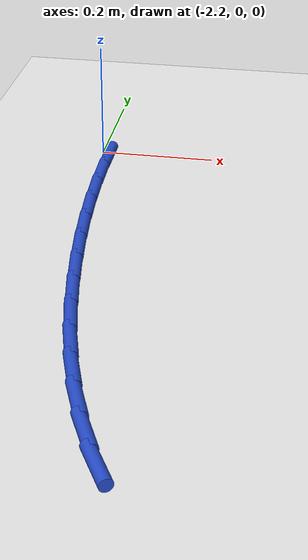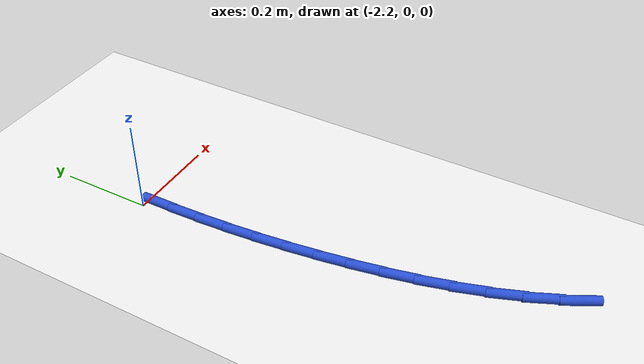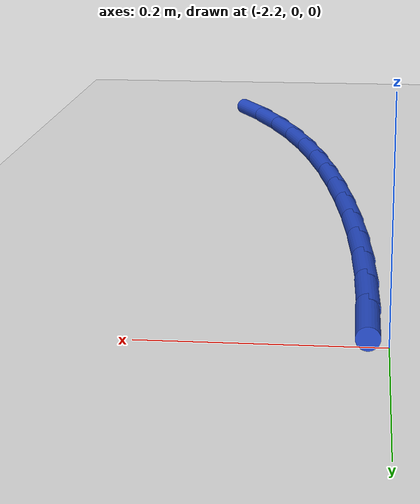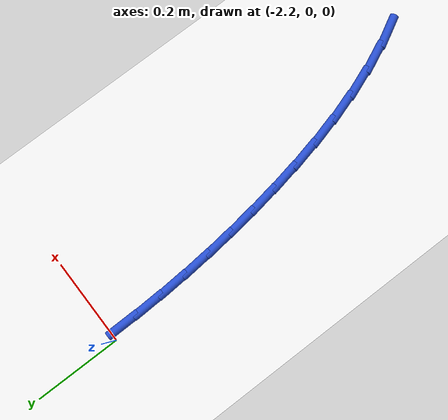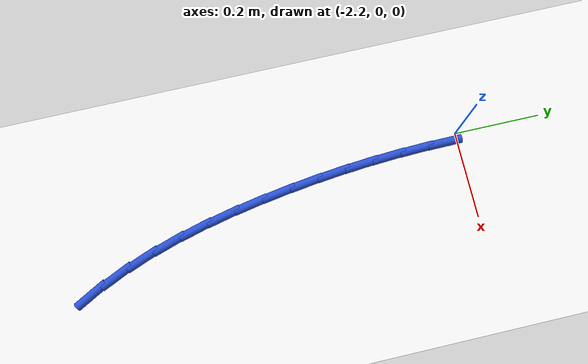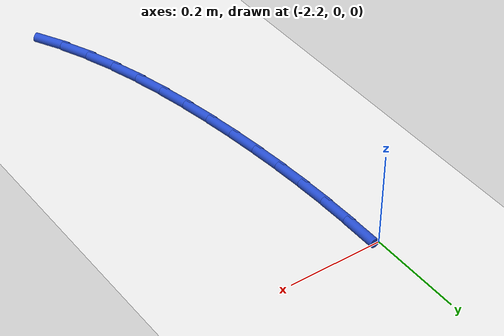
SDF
<sdf version="1.6">
 <world name="default">
  <model name="ground_plane">
   <static>1</static>
   <link name="link">
    <collision name="collision">
     <geometry><plane><normal>0 0 1</normal><size>100 100</size></plane></geometry>
     <surface><friction><ode><mu>100</mu><mu2>50</mu2></ode></friction></surface>
    </collision>
    <visual name="visual">
     <cast_shadows>0</cast_shadows>
     <geometry><plane><normal>0 0 1</normal><size>100 100</size></plane></geometry>
     <material>
      <script><uri>file://media/materials/scripts/gazebo.material</uri><name>Gazebo/WhiteGlow</name></script>
     </material>
    </visual>
   </link>
  </model>
  <model name="line">
   <link name="link_54">
    <pose>-2.183165491061489 -0.03196790887274535 0.01 0 1.57 -1.5593164328319287</pose>
    <collision name="collision">
     <geometry><cylinder><radius>0.01</radius><length>0.08</length></cylinder></geometry>
    </collision>
    <visual name="visual">
     <material>
      <script><name>Gazebo/Blue</name><uri>file://media/materials/scripts/gazebo.material</uri></script>
     </material>
     <geometry><cylinder><radius>0.01</radius><length>0.08</length></cylinder></geometry>
    </visual>
   </link>
   <link name="link_55">
    <pose>-2.1824029686076365 -0.09838742101490029 0.01 0 1.57 -1.5325645031479442</pose>
    <collision name="collision">
     <geometry><cylinder><radius>0.01</radius><length>0.08</length></cylinder></geometry>
    </collision>
    <visual name="visual">
     <material>
      <script><name>Gazebo/Blue</name><uri>file://media/materials/scripts/gazebo.material</uri></script>
     </material>
     <geometry><cylinder><radius>0.01</radius><length>0.08</length></cylinder></geometry>
    </visual>
   </link>
   <link name="link_56">
    <pose>-2.1798709922668733 -0.16458208135800642 0.01 0 1.57 -1.5062154027905108</pose>
    <collision name="collision">
     <geometry><cylinder><radius>0.01</radius><length>0.08</length></cylinder></geometry>
    </collision>
    <visual name="visual">
     <material>
      <script><name>Gazebo/Blue</name><uri>file://media/materials/scripts/gazebo.material</uri></script>
     </material>
     <geometry><cylinder><radius>0.01</radius><length>0.08</length></cylinder></geometry>
    </visual>
   </link>
   <link name="link_57">
    <pose>-2.1756006240079904 -0.23061442559929238 0.01 0 1.57 -1.4803797038303759</pose>
    <collision name="collision">
     <geometry><cylinder><radius>0.01</radius><length>0.08</length></cylinder></geometry>
    </collision>
    <visual name="visual">
     <material>
      <script><name>Gazebo/Blue</name><uri>file://media/materials/scripts/gazebo.material</uri></script>
     </material>
     <geometry><cylinder><radius>0.01</radius><length>0.08</length></cylinder></geometry>
    </visual>
   </link>
   <link name="link_58">
    <pose>-2.169622925799775 -0.2965469894359838 0.01 0 1.57 -1.455161091742461</pose>
    <collision name="collision">
     <geometry><cylinder><radius>0.01</radius><length>0.08</length></cylinder></geometry>
    </collision>
    <visual name="visual">
     <material>
      <script><name>Gazebo/Blue</name><uri>file://media/materials/scripts/gazebo.material</uri></script>
     </material>
     <geometry><cylinder><radius>0.01</radius><length>0.08</length></cylinder></geometry>
    </visual>
   </link>
   <link name="link_59">
    <pose>-2.161968959611017 -0.3624423085653097 0.01 0 1.57 -1.4306548014049332</pose>
    <collision name="collision">
     <geometry><cylinder><radius>0.01</radius><length>0.08</length></cylinder></geometry>
    </collision>
    <visual name="visual">
     <material>
      <script><name>Gazebo/Blue</name><uri>file://media/materials/scripts/gazebo.material</uri></script>
     </material>
     <geometry><cylinder><radius>0.01</radius><length>0.08</length></cylinder></geometry>
    </visual>
   </link>
   <link name="link_60">
    <pose>-2.152669787410505 -0.4283629186844958 0.01 0 1.57 -1.4065046783114015</pose>
    <collision name="collision">
     <geometry><cylinder><radius>0.01</radius><length>0.08</length></cylinder></geometry>
    </collision>
    <visual name="visual">
     <material>
      <script><name>Gazebo/Blue</name><uri>file://media/materials/scripts/gazebo.material</uri></script>
     </material>
     <geometry><cylinder><radius>0.01</radius><length>0.08</length></cylinder></geometry>
    </visual>
   </link>
   <link name="link_61">
    <pose>-2.141730045435845 -0.49435006364709283 0.01 0 1.57 -1.378489481240909</pose>
    <collision name="collision">
     <geometry><cylinder><radius>0.01</radius><length>0.08</length></cylinder></geometry>
    </collision>
    <visual name="visual">
     <material>
      <script><name>Gazebo/Blue</name><uri>file://media/materials/scripts/gazebo.material</uri></script>
     </material>
     <geometry><cylinder><radius>0.01</radius><length>0.08</length></cylinder></geometry>
    </visual>
   </link>
   <link name="link_62">
    <pose>-2.1289003514711538 -0.5602403185629335 0.01 0 1.57 -1.3441173162260345</pose>
    <collision name="collision">
     <geometry><cylinder><radius>0.01</radius><length>0.08</length></cylinder></geometry>
    </collision>
    <visual name="visual">
     <material>
      <script><name>Gazebo/Blue</name><uri>file://media/materials/scripts/gazebo.material</uri></script>
     </material>
     <geometry><cylinder><radius>0.01</radius><length>0.08</length></cylinder></geometry>
    </visual>
   </link>
   <link name="link_63">
    <pose>-2.1137896011291124 -0.6257560695985475 0.01 0 1.57 -1.3031857359061725</pose>
    <collision name="collision">
     <geometry><cylinder><radius>0.01</radius><length>0.08</length></cylinder></geometry>
    </collision>
    <visual name="visual">
     <material>
      <script><name>Gazebo/Blue</name><uri>file://media/materials/scripts/gazebo.material</uri></script>
     </material>
     <geometry><cylinder><radius>0.01</radius><length>0.08</length></cylinder></geometry>
    </visual>
   </link>
   <link name="link_64">
    <pose>-2.0960051500456824 -0.6906184621243845 0.01 0 1.57 -1.255525093756426</pose>
    <collision name="collision">
     <geometry><cylinder><radius>0.01</radius><length>0.08</length></cylinder></geometry>
    </collision>
    <visual name="visual">
     <material>
      <script><name>Gazebo/Blue</name><uri>file://media/materials/scripts/gazebo.material</uri></script>
     </material>
     <geometry><cylinder><radius>0.01</radius><length>0.08</length></cylinder></geometry>
    </visual>
   </link>
   <link name="link_65">
    <pose>-2.0751543538568282 -0.7545486415108982 0.01 0 1.57 -1.2010270646368202</pose>
    <collision name="collision">
     <geometry><cylinder><radius>0.01</radius><length>0.08</length></cylinder></geometry>
    </collision>
    <visual name="visual">
     <material>
      <script><name>Gazebo/Blue</name><uri>file://media/materials/scripts/gazebo.material</uri></script>
     </material>
     <geometry><cylinder><radius>0.01</radius><length>0.08</length></cylinder></geometry>
    </visual>
   </link>
   <link name="link_66">
    <pose>-2.050844568198511 -0.8172677531285413 0.01 0 1.57 -1.13971160822589</pose>
    <collision name="collision">
     <geometry><cylinder><radius>0.01</radius><length>0.08</length></cylinder></geometry>
    </collision>
    <visual name="visual">
     <material>
      <script><name>Gazebo/Blue</name><uri>file://media/materials/scripts/gazebo.material</uri></script>
     </material>
     <geometry><cylinder><radius>0.01</radius><length>0.08</length></cylinder></geometry>
    </visual>
   </link>
   <link name="link_67">
    <pose>-2.0226831487066965 -0.8784969423477652 0.01 0 1.57 -1.0718029333462182</pose>
    <collision name="collision">
     <geometry><cylinder><radius>0.01</radius><length>0.08</length></cylinder></geometry>
    </collision>
    <visual name="visual">
     <material>
      <script><name>Gazebo/Blue</name><uri>file://media/materials/scripts/gazebo.material</uri></script>
     </material>
     <geometry><cylinder><radius>0.01</radius><length>0.08</length></cylinder></geometry>
    </visual>
   </link>
  </model>
 </world>
</sdf>
